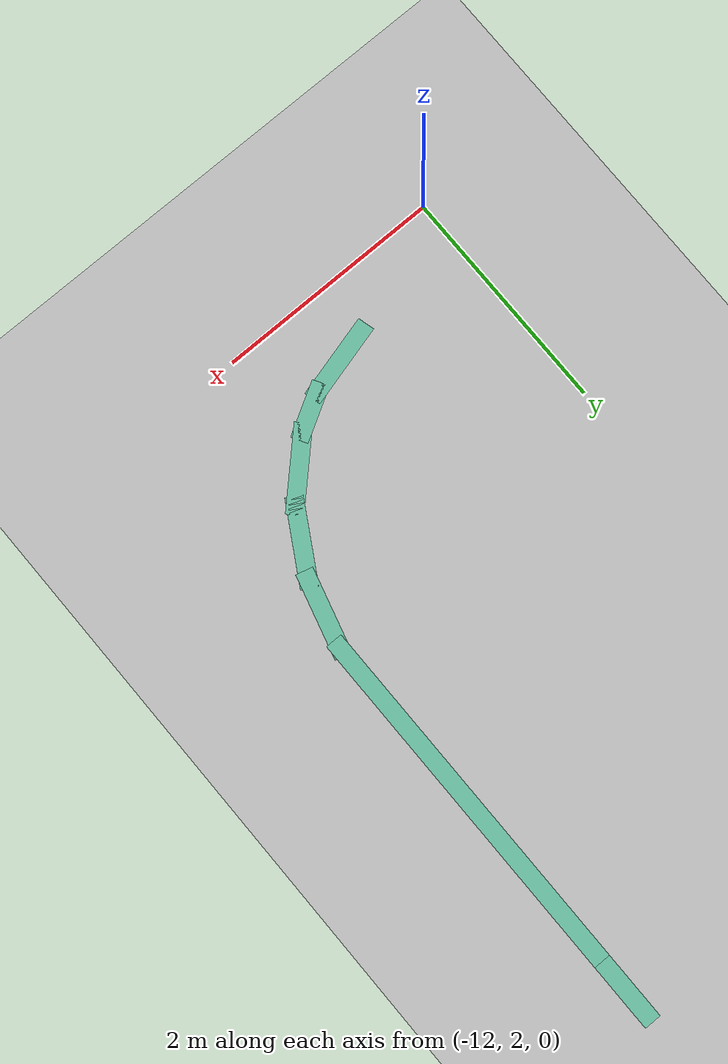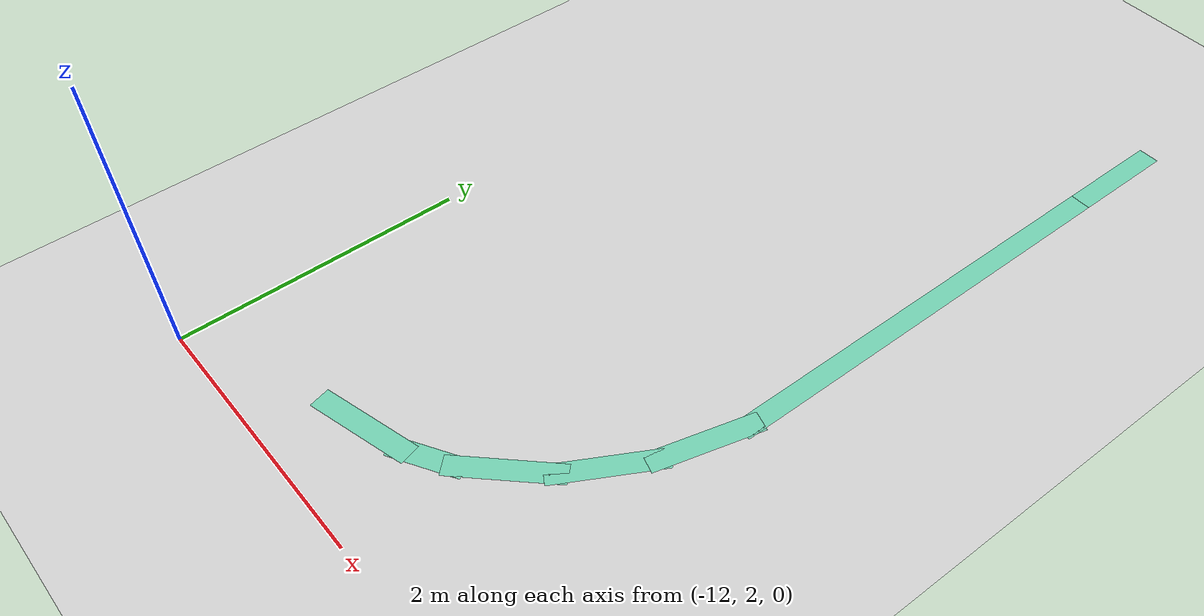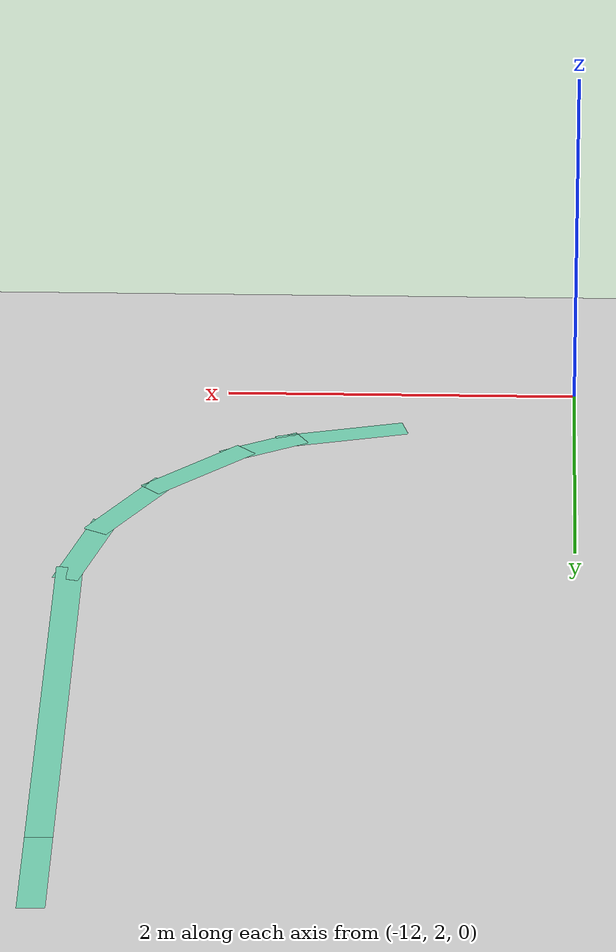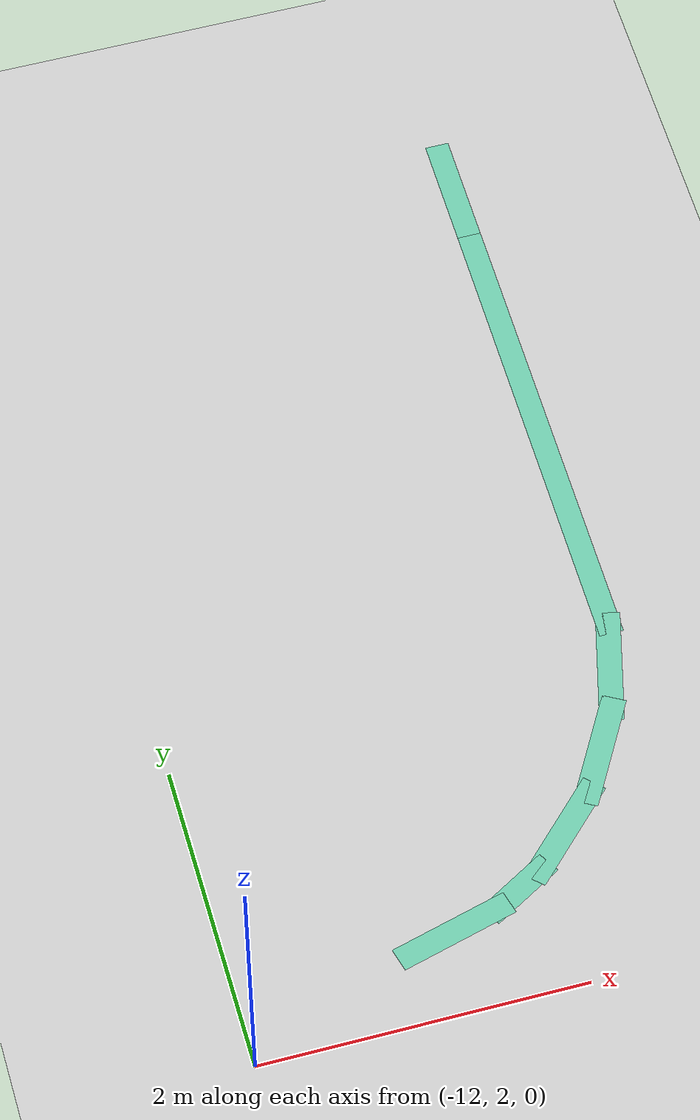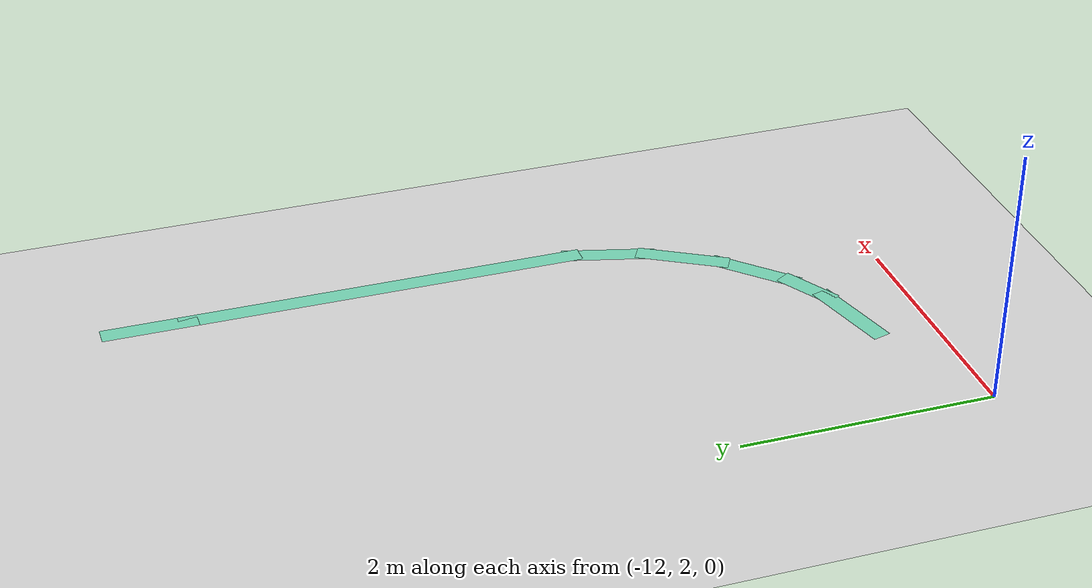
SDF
<sdf version="1.6">
 <world name="default">
  <model name="ground_plane">
   <static>1</static>
   <link name="link">
    <collision name="collision">
     <geometry><plane><normal>0 0 1</normal><size>100 100</size></plane></geometry>
     <surface><friction><ode><mu>100</mu><mu2>50</mu2></ode></friction></surface>
    </collision>
    <visual name="visual">
     <cast_shadows>0</cast_shadows>
     <geometry><plane><normal>0 0 1</normal><size>100 100</size></plane></geometry>
     <material>
      <script><uri>file://media/materials/scripts/gazebo.material</uri><name>Gazebo/Grey</name></script>
     </material>
    </visual>
   </link>
  </model>
  <model name="pomdp_path">
   <link name="Wall_211">
    <pose>0.694107 1.78736 0 0 -0 1.5708</pose>
    <visual name="Wall_211_Visual">
     <pose>0 0 0.0001 0 -0 0</pose>
     <geometry><box><size>0.75 0.15 0</size></box></geometry>
     <material>
      <script><uri>file://media/materials/scripts/gazebo.material</uri><name>Gazebo/Grey</name></script>
      <ambient>0.435294 0.796078 0.67451 1</ambient>
      <shader type="pixel"/>
     </material>
     <meta><layer>0</layer></meta>
    </visual>
    <collision name="Wall_211_Collision">
     <pose>0 0 0.0001 0 -0 0</pose>
     <geometry><box><size>0.75 0.15 0</size></box></geometry>
     <surface>
      <friction>
       <ode><mu>1</mu><mu2>1</mu2><fdir1>0 0 0</fdir1><slip1>0</slip1><slip2>0</slip2></ode>
       <torsional>
        <coefficient>1</coefficient>
        <patch_radius>0</patch_radius>
        <surface_radius>0</surface_radius>
        <use_patch_radius>1</use_patch_radius>
        <ode><slip>0</slip></ode>
       </torsional>
      </friction>
      <bounce><restitution_coefficient>0</restitution_coefficient><threshold>1e+06</threshold></bounce>
      <contact>
       <collide_without_contact>0</collide_without_contact>
       <collide_without_contact_bitmask>1</collide_without_contact_bitmask>
       <collide_bitmask>1</collide_bitmask>
       <ode>
        <soft_cfm>0</soft_cfm>
        <soft_erp>0.2</soft_erp>
        <kp>1e+13</kp>
        <kd>1</kd>
        <max_vel>0.01</max_vel>
        <min_depth>0</min_depth>
       </ode>
       <bullet>
        <split_impulse>1</split_impulse>
        <split_impulse_penetration_threshold>-0.01</split_impulse_penetration_threshold>
        <soft_cfm>0</soft_cfm>
        <soft_erp>0.2</soft_erp>
        <kp>1e+13</kp>
        <kd>1</kd>
       </bullet>
      </contact>
     </surface>
    </collision>
   </link>
   <link name="Wall_213">
    <pose>0.694107 3.63736 0 0 -0 1.5708</pose>
    <visual name="Wall_213_Visual">
     <pose>0 0 0.0001 0 -0 0</pose>
     <geometry><box><size>3.25 0.15 0</size></box></geometry>
     <material>
      <script><uri>file://media/materials/scripts/gazebo.material</uri><name>Gazebo/Grey</name></script>
      <ambient>0.435294 0.796078 0.67451 1</ambient>
      <shader type="pixel"/>
     </material>
     <meta><layer>0</layer></meta>
    </visual>
    <collision name="Wall_213_Collision">
     <pose>0 0 0.0001 0 -0 0</pose>
     <geometry><box><size>3.25 0.15 0</size></box></geometry>
     <surface>
      <friction>
       <ode><mu>1</mu><mu2>1</mu2><fdir1>0 0 0</fdir1><slip1>0</slip1><slip2>0</slip2></ode>
       <torsional>
        <coefficient>1</coefficient>
        <patch_radius>0</patch_radius>
        <surface_radius>0</surface_radius>
        <use_patch_radius>1</use_patch_radius>
        <ode><slip>0</slip></ode>
       </torsional>
      </friction>
      <bounce><restitution_coefficient>0</restitution_coefficient><threshold>1e+06</threshold></bounce>
      <contact>
       <collide_without_contact>0</collide_without_contact>
       <collide_without_contact_bitmask>1</collide_without_contact_bitmask>
       <collide_bitmask>1</collide_bitmask>
       <ode>
        <soft_cfm>0</soft_cfm>
        <soft_erp>0.2</soft_erp>
        <kp>1e+13</kp>
        <kd>1</kd>
        <max_vel>0.01</max_vel>
        <min_depth>0</min_depth>
       </ode>
       <bullet>
        <split_impulse>1</split_impulse>
        <split_impulse_penetration_threshold>-0.01</split_impulse_penetration_threshold>
        <soft_cfm>0</soft_cfm>
        <soft_erp>0.2</soft_erp>
        <kp>1e+13</kp>
        <kd>1</kd>
       </bullet>
      </contact>
     </surface>
    </collision>
   </link>
   <link name="Wall_216">
    <pose>0.771752 5.47714 0 0 -0 1.309</pose>
    <visual name="Wall_216_Visual">
     <pose>0 0 0.0001 0 -0 0</pose>
     <geometry><box><size>0.75 0.15 0</size></box></geometry>
     <material>
      <script><uri>file://media/materials/scripts/gazebo.material</uri><name>Gazebo/Grey</name></script>
      <ambient>0.435294 0.796078 0.67451 1</ambient>
      <shader type="pixel"/>
     </material>
     <meta><layer>0</layer></meta>
    </visual>
    <collision name="Wall_216_Collision">
     <pose>0 0 0.0001 0 -0 0</pose>
     <geometry><box><size>0.75 0.15 0</size></box></geometry>
     <surface>
      <friction>
       <ode><mu>1</mu><mu2>1</mu2><fdir1>0 0 0</fdir1><slip1>0</slip1><slip2>0</slip2></ode>
       <torsional>
        <coefficient>1</coefficient>
        <patch_radius>0</patch_radius>
        <surface_radius>0</surface_radius>
        <use_patch_radius>1</use_patch_radius>
        <ode><slip>0</slip></ode>
       </torsional>
      </friction>
      <bounce><restitution_coefficient>0</restitution_coefficient><threshold>1e+06</threshold></bounce>
      <contact>
       <collide_without_contact>0</collide_without_contact>
       <collide_without_contact_bitmask>1</collide_without_contact_bitmask>
       <collide_bitmask>1</collide_bitmask>
       <ode>
        <soft_cfm>0</soft_cfm>
        <soft_erp>0.2</soft_erp>
        <kp>1e+13</kp>
        <kd>1</kd>
        <max_vel>0.01</max_vel>
        <min_depth>0</min_depth>
       </ode>
       <bullet>
        <split_impulse>1</split_impulse>
        <split_impulse_penetration_threshold>-0.01</split_impulse_penetration_threshold>
        <soft_cfm>0</soft_cfm>
        <soft_erp>0.2</soft_erp>
        <kp>1e+13</kp>
        <kd>1</kd>
       </bullet>
      </contact>
     </surface>
    </collision>
   </link>
   <link name="Wall_217">
    <pose>0.999398 6.02672 0 0 -0 1.0472</pose>
    <visual name="Wall_217_Visual">
     <pose>0 0 0.0001 0 -0 0</pose>
     <geometry><box><size>0.75 0.15 0</size></box></geometry>
     <material>
      <script><uri>file://media/materials/scripts/gazebo.material</uri><name>Gazebo/Grey</name></script>
      <ambient>0.435294 0.796078 0.67451 1</ambient>
      <shader type="pixel"/>
     </material>
     <meta><layer>0</layer></meta>
    </visual>
    <collision name="Wall_217_Collision">
     <pose>0 0 0.0001 0 -0 0</pose>
     <geometry><box><size>0.75 0.15 0</size></box></geometry>
     <surface>
      <friction>
       <ode><mu>1</mu><mu2>1</mu2><fdir1>0 0 0</fdir1><slip1>0</slip1><slip2>0</slip2></ode>
       <torsional>
        <coefficient>1</coefficient>
        <patch_radius>0</patch_radius>
        <surface_radius>0</surface_radius>
        <use_patch_radius>1</use_patch_radius>
        <ode><slip>0</slip></ode>
       </torsional>
      </friction>
      <bounce><restitution_coefficient>0</restitution_coefficient><threshold>1e+06</threshold></bounce>
      <contact>
       <collide_without_contact>0</collide_without_contact>
       <collide_without_contact_bitmask>1</collide_without_contact_bitmask>
       <collide_bitmask>1</collide_bitmask>
       <ode>
        <soft_cfm>0</soft_cfm>
        <soft_erp>0.2</soft_erp>
        <kp>1e+13</kp>
        <kd>1</kd>
        <max_vel>0.01</max_vel>
        <min_depth>0</min_depth>
       </ode>
       <bullet>
        <split_impulse>1</split_impulse>
        <split_impulse_penetration_threshold>-0.01</split_impulse_penetration_threshold>
        <soft_cfm>0</soft_cfm>
        <soft_erp>0.2</soft_erp>
        <kp>1e+13</kp>
        <kd>1</kd>
       </bullet>
      </contact>
     </surface>
    </collision>
   </link>
   <link name="Wall_219">
    <pose>1.36153 6.49866 0 0 -0 0.785398</pose>
    <visual name="Wall_219_Visual">
     <pose>0 0 0.0001 0 -0 0</pose>
     <geometry><box><size>0.75 0.15 0</size></box></geometry>
     <material>
      <script><uri>file://media/materials/scripts/gazebo.material</uri><name>Gazebo/Grey</name></script>
      <ambient>0.435294 0.796078 0.67451 1</ambient>
      <shader type="pixel"/>
     </material>
     <meta><layer>0</layer></meta>
    </visual>
    <collision name="Wall_219_Collision">
     <pose>0 0 0.0001 0 -0 0</pose>
     <geometry><box><size>0.75 0.15 0</size></box></geometry>
     <surface>
      <friction>
       <ode><mu>1</mu><mu2>1</mu2><fdir1>0 0 0</fdir1><slip1>0</slip1><slip2>0</slip2></ode>
       <torsional>
        <coefficient>1</coefficient>
        <patch_radius>0</patch_radius>
        <surface_radius>0</surface_radius>
        <use_patch_radius>1</use_patch_radius>
        <ode><slip>0</slip></ode>
       </torsional>
      </friction>
      <bounce><restitution_coefficient>0</restitution_coefficient><threshold>1e+06</threshold></bounce>
      <contact>
       <collide_without_contact>0</collide_without_contact>
       <collide_without_contact_bitmask>1</collide_without_contact_bitmask>
       <collide_bitmask>1</collide_bitmask>
       <ode>
        <soft_cfm>0</soft_cfm>
        <soft_erp>0.2</soft_erp>
        <kp>1e+13</kp>
        <kd>1</kd>
        <max_vel>0.01</max_vel>
        <min_depth>0</min_depth>
       </ode>
       <bullet>
        <split_impulse>1</split_impulse>
        <split_impulse_penetration_threshold>-0.01</split_impulse_penetration_threshold>
        <soft_cfm>0</soft_cfm>
        <soft_erp>0.2</soft_erp>
        <kp>1e+13</kp>
        <kd>1</kd>
       </bullet>
      </contact>
     </surface>
    </collision>
   </link>
   <link name="Wall_220">
    <pose>1.72522 6.7983 0 0 -0 0.523599</pose>
    <visual name="Wall_220_Visual">
     <pose>0 0 0.0001 0 -0 0</pose>
     <geometry><box><size>0.5 0.15 0</size></box></geometry>
     <material>
      <script><uri>file://media/materials/scripts/gazebo.material</uri><name>Gazebo/Grey</name></script>
      <ambient>0.435294 0.796078 0.67451 1</ambient>
      <shader type="pixel"/>
     </material>
     <meta><layer>0</layer></meta>
    </visual>
    <collision name="Wall_220_Collision">
     <pose>0 0 0.0001 0 -0 0</pose>
     <geometry><box><size>0.5 0.15 0</size></box></geometry>
     <surface>
      <friction>
       <ode><mu>1</mu><mu2>1</mu2><fdir1>0 0 0</fdir1><slip1>0</slip1><slip2>0</slip2></ode>
       <torsional>
        <coefficient>1</coefficient>
        <patch_radius>0</patch_radius>
        <surface_radius>0</surface_radius>
        <use_patch_radius>1</use_patch_radius>
        <ode><slip>0</slip></ode>
       </torsional>
      </friction>
      <bounce><restitution_coefficient>0</restitution_coefficient><threshold>1e+06</threshold></bounce>
      <contact>
       <collide_without_contact>0</collide_without_contact>
       <collide_without_contact_bitmask>1</collide_without_contact_bitmask>
       <collide_bitmask>1</collide_bitmask>
       <ode>
        <soft_cfm>0</soft_cfm>
        <soft_erp>0.2</soft_erp>
        <kp>1e+13</kp>
        <kd>1</kd>
        <max_vel>0.01</max_vel>
        <min_depth>0</min_depth>
       </ode>
       <bullet>
        <split_impulse>1</split_impulse>
        <split_impulse_penetration_threshold>-0.01</split_impulse_penetration_threshold>
        <soft_cfm>0</soft_cfm>
        <soft_erp>0.2</soft_erp>
        <kp>1e+13</kp>
        <kd>1</kd>
       </bullet>
      </contact>
     </surface>
    </collision>
   </link>
   <link name="Wall_221">
    <pose>2.16655 6.96344 0 0 -0 0.261799</pose>
    <visual name="Wall_221_Visual">
     <pose>0 0 0.0001 0 -0 0</pose>
     <geometry><box><size>0.75 0.15 0</size></box></geometry>
     <material>
      <script><uri>file://media/materials/scripts/gazebo.material</uri><name>Gazebo/Grey</name></script>
      <ambient>0.435294 0.796078 0.67451 1</ambient>
      <shader type="pixel"/>
     </material>
     <meta><layer>0</layer></meta>
    </visual>
    <collision name="Wall_221_Collision">
     <pose>0 0 0.0001 0 -0 0</pose>
     <geometry><box><size>0.75 0.15 0</size></box></geometry>
     <surface>
      <friction>
       <ode><mu>1</mu><mu2>1</mu2><fdir1>0 0 0</fdir1><slip1>0</slip1><slip2>0</slip2></ode>
       <torsional>
        <coefficient>1</coefficient>
        <patch_radius>0</patch_radius>
        <surface_radius>0</surface_radius>
        <use_patch_radius>1</use_patch_radius>
        <ode><slip>0</slip></ode>
       </torsional>
      </friction>
      <bounce><restitution_coefficient>0</restitution_coefficient><threshold>1e+06</threshold></bounce>
      <contact>
       <collide_without_contact>0</collide_without_contact>
       <collide_without_contact_bitmask>1</collide_without_contact_bitmask>
       <collide_bitmask>1</collide_bitmask>
       <ode>
        <soft_cfm>0</soft_cfm>
        <soft_erp>0.2</soft_erp>
        <kp>1e+13</kp>
        <kd>1</kd>
        <max_vel>0.01</max_vel>
        <min_depth>0</min_depth>
       </ode>
       <bullet>
        <split_impulse>1</split_impulse>
        <split_impulse_penetration_threshold>-0.01</split_impulse_penetration_threshold>
        <soft_cfm>0</soft_cfm>
        <soft_erp>0.2</soft_erp>
        <kp>1e+13</kp>
        <kd>1</kd>
       </bullet>
      </contact>
     </surface>
    </collision>
   </link>
   <static>1</static>
   <pose>-8.49995 9.50005 0 0 -0 3.14159</pose>
  </model>
 </world>
</sdf>
